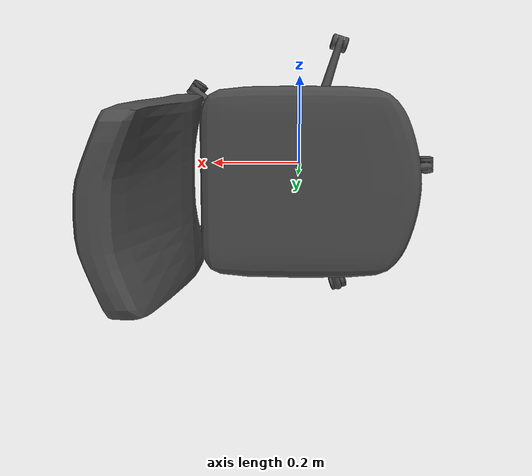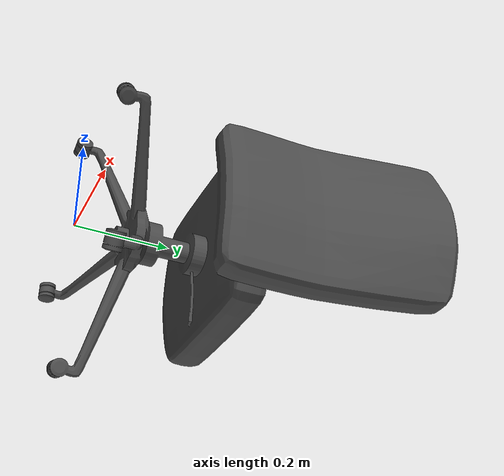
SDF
<?xml version="1.0" ?>
<sdf version="1.6">
  <model name="extra_office_chair_v2">
    <static>true</static>
    <link name="link">
      <visual name="visual">
        <geometry>
          <mesh>
            <scale>0.0025 0.0025 0.0025</scale>
            <uri>model://extra_office_chair_v2/meshes/OfficeChair.dae</uri>
          </mesh>
	</geometry>
          <material>
            <script>
              <uri>file://media/materials/scripts/gazebo.material</uri>
              <name>Gazebo/DarkGrey</name>
            </script>
         </material>
      </visual>
    </link>
  </model>
</sdf>
